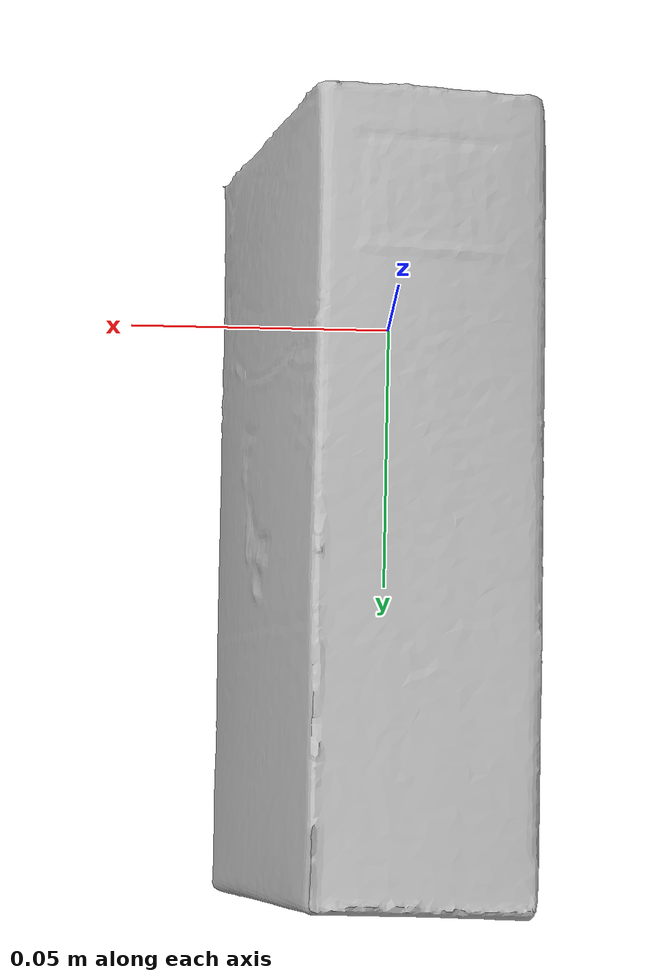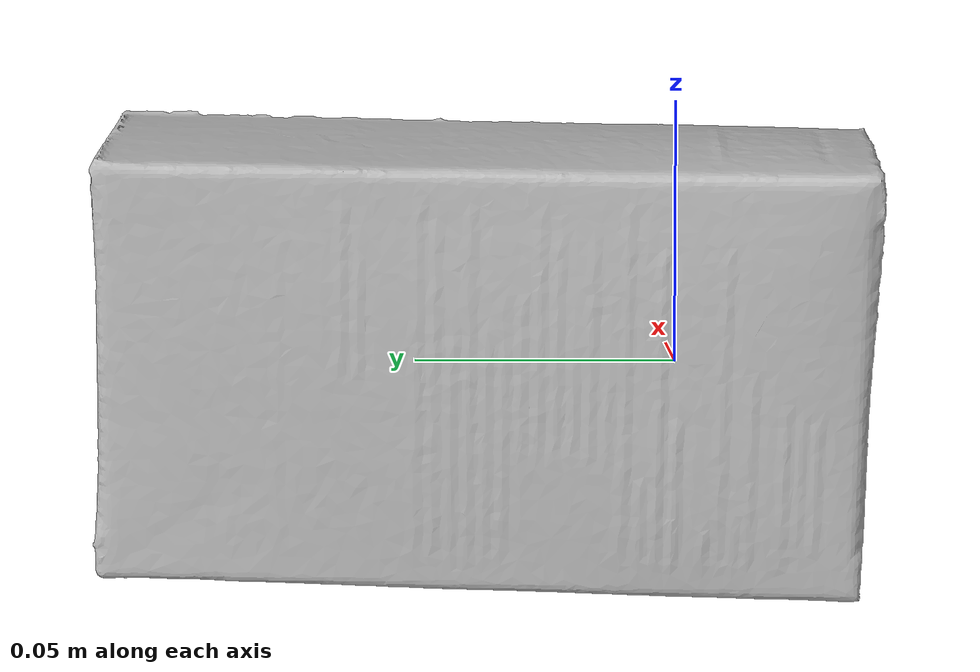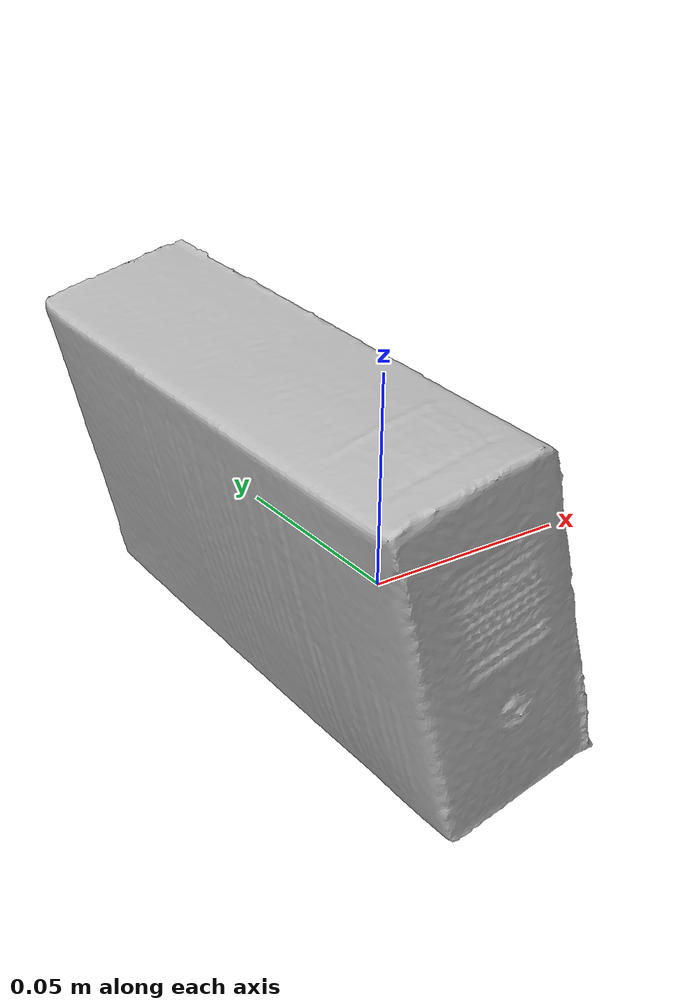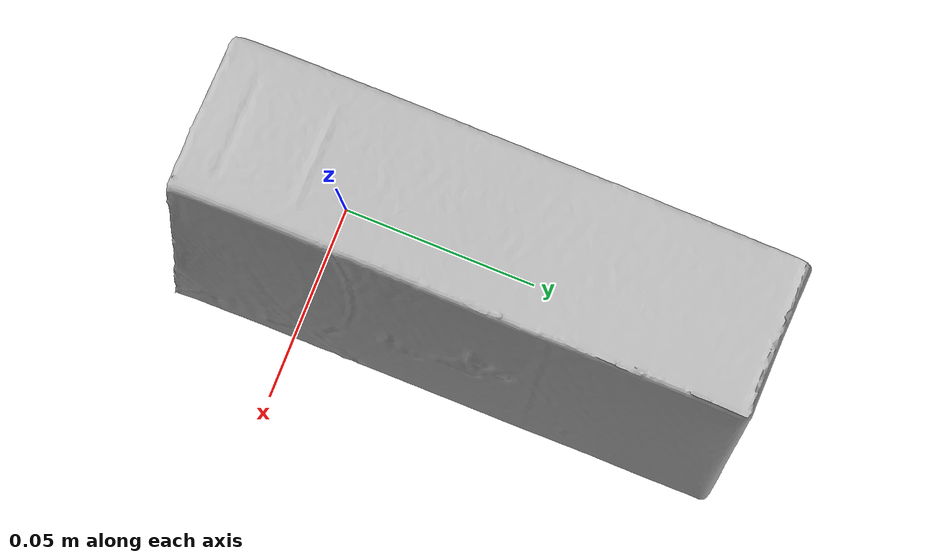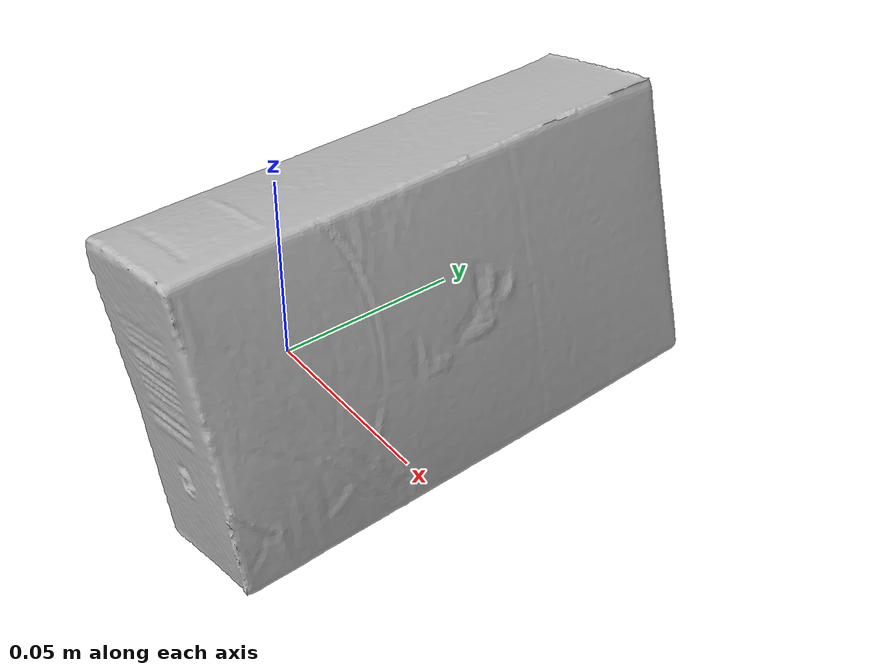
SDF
<?xml version='1.0'?>
<sdf version="1.4">
  <model name="InstantSauce">
    <static>false</static>
    <link name="link">
      <inertial>
        <pose>0.0037863500223923206 0.03598698080022428 0.0014957955075199502 1.5423185919335465 0.2579258074365327 3.140187223890506</pose>
        <mass>0.05440972910619637</mass>
        <inertia>
          <ixx>0.00012930930787154727</ixx>
          <ixy>6.24471302990936e-21</ixy>
          <ixz>-1.0981219491647207e-20</ixz>
          <iyy>0.00010540486376754297</iyy>
          <iyz>3.872620721333597e-20</iyz>
          <izz>4.083859102360769e-05</izz>
        </inertia>
      </inertial>
      <collision name="collision">
        <geometry>
          <mesh>
            <!-- Use a downsampled mesh for collisions -->
            <uri>model:///InstantSauce/InstantSauce_250_collision.obj</uri>
	        </mesh>
        </geometry>
        <surface>
      </surface>
      </collision>
      <visual name="visual">
        <geometry>
          <mesh>
            <uri>model:///InstantSauce/InstantSauce_25k_tex.obj</uri>
	        </mesh>
        </geometry>
        <material>
          <script>
            <uri>model:///InstantSauce/InstantSauce.material</uri>
            <name>InstantSauce</name>
          </script>
        </material>
      </visual>
    </link>
  </model>
</sdf>
